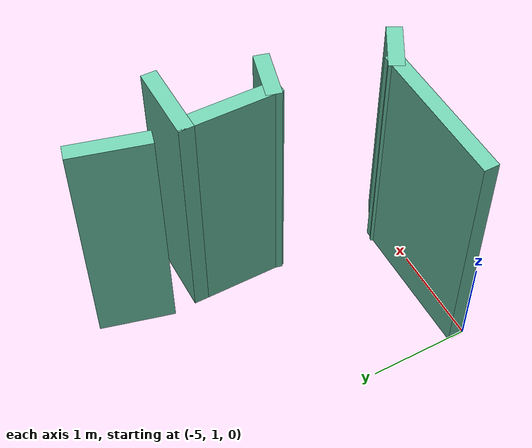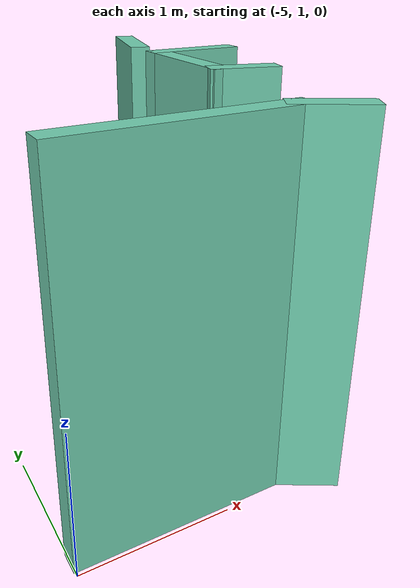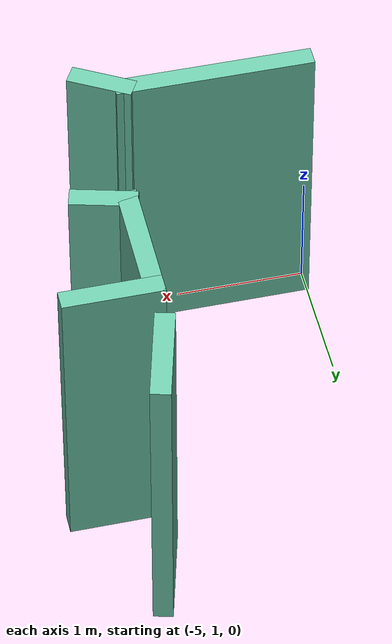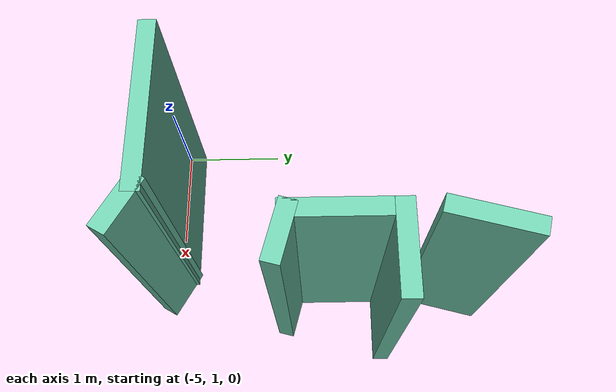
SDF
<sdf version="1.6">
 <world name="default">
  <model name="map_3">
   <pose>0.639107 -0.355311 0 0 -0 0</pose>
   <link name="Wall_27">
    <collision name="Wall_27_Collision">
     <geometry><box><size>0.75 0.15 2.5</size></box></geometry>
     <pose>0 0 1.25 0 -0 0</pose>
    </collision>
    <visual name="Wall_27_Visual">
     <pose>0 0 1.25 0 -0 0</pose>
     <geometry><box><size>0.75 0.15 2.5</size></box></geometry>
     <material>
      <script><uri>file://media/materials/scripts/gazebo.material</uri><name>Gazebo/Grey</name></script>
      <ambient>0.435294 0.796078 0.67451 1</ambient>
     </material>
     <meta><layer>0</layer></meta>
    </visual>
    <pose>-3.93358 4.06105 0 0 -0 -1.8326</pose>
   </link>
   <link name="Wall_30">
    <collision name="Wall_30_Collision">
     <geometry><box><size>0.75 0.15 2.5</size></box></geometry>
     <pose>0 0 1.25 0 -0 0</pose>
    </collision>
    <visual name="Wall_30_Visual">
     <pose>0 0 1.25 0 -0 0</pose>
     <geometry><box><size>0.75 0.15 2.5</size></box></geometry>
     <material>
      <script><uri>file://media/materials/scripts/gazebo.material</uri><name>Gazebo/Grey</name></script>
      <ambient>0.435294 0.796078 0.67451 1</ambient>
     </material>
     <meta><layer>0</layer></meta>
    </visual>
    <pose>-3.71123 3.42127 0 0 -0 3.14159</pose>
   </link>
   <link name="Wall_31">
    <collision name="Wall_31_Collision">
     <geometry><box><size>1 0.15 2.5</size></box></geometry>
     <pose>0 0 1.25 0 -0 0</pose>
    </collision>
    <visual name="Wall_31_Visual">
     <pose>0 0 1.25 0 -0 0</pose>
     <geometry><box><size>1 0.15 2.5</size></box></geometry>
     <material>
      <script><uri>file://media/materials/scripts/gazebo.material</uri><name>Gazebo/Grey</name></script>
      <ambient>0.435294 0.796078 0.67451 1</ambient>
     </material>
     <meta><layer>0</layer></meta>
    </visual>
    <pose>-4.01123 2.99627 0 0 -0 -1.5708</pose>
   </link>
   <link name="Wall_32">
    <collision name="Wall_32_Collision">
     <geometry><box><size>0.5 0.15 2.5</size></box></geometry>
     <pose>0 0 1.25 0 -0 0</pose>
    </collision>
    <visual name="Wall_32_Visual">
     <pose>0 0 1.25 0 -0 0</pose>
     <geometry><box><size>0.5 0.15 2.5</size></box></geometry>
     <material>
      <script><uri>file://media/materials/scripts/gazebo.material</uri><name>Gazebo/Grey</name></script>
      <ambient>0.435294 0.796078 0.67451 1</ambient>
     </material>
     <meta><layer>0</layer></meta>
    </visual>
    <pose>-3.84219 2.52598 0 0 -0 -0.261799</pose>
   </link>
   <link name="Wall_37">
    <collision name="Wall_37_Collision">
     <geometry><box><size>0.5 0.15 2.5</size></box></geometry>
     <pose>0 0 1.25 0 -0 0</pose>
    </collision>
    <visual name="Wall_37_Visual">
     <pose>0 0 1.25 0 -0 0</pose>
     <geometry><box><size>0.5 0.15 2.5</size></box></geometry>
     <material>
      <script><uri>file://media/materials/scripts/gazebo.material</uri><name>Gazebo/Grey</name></script>
      <ambient>0.435294 0.796078 0.67451 1</ambient>
     </material>
     <meta><layer>0</layer></meta>
    </visual>
    <pose>-4.07471 1.36819 0 0 -0 2.61799</pose>
   </link>
   <link name="Wall_38">
    <collision name="Wall_38_Collision">
     <geometry><box><size>1.5 0.15 2.5</size></box></geometry>
     <pose>0 0 1.25 0 -0 0</pose>
    </collision>
    <visual name="Wall_38_Visual">
     <pose>0 0 1.25 0 -0 0</pose>
     <geometry><box><size>1.5 0.15 2.5</size></box></geometry>
     <material>
      <script><uri>file://media/materials/scripts/gazebo.material</uri><name>Gazebo/Grey</name></script>
      <ambient>0.435294 0.796078 0.67451 1</ambient>
     </material>
     <meta><layer>0</layer></meta>
    </visual>
    <pose>-4.90126 1.45569 0 0 -0 3.14159</pose>
   </link>
   <static>1</static>
  </model>
 </world>
</sdf>
